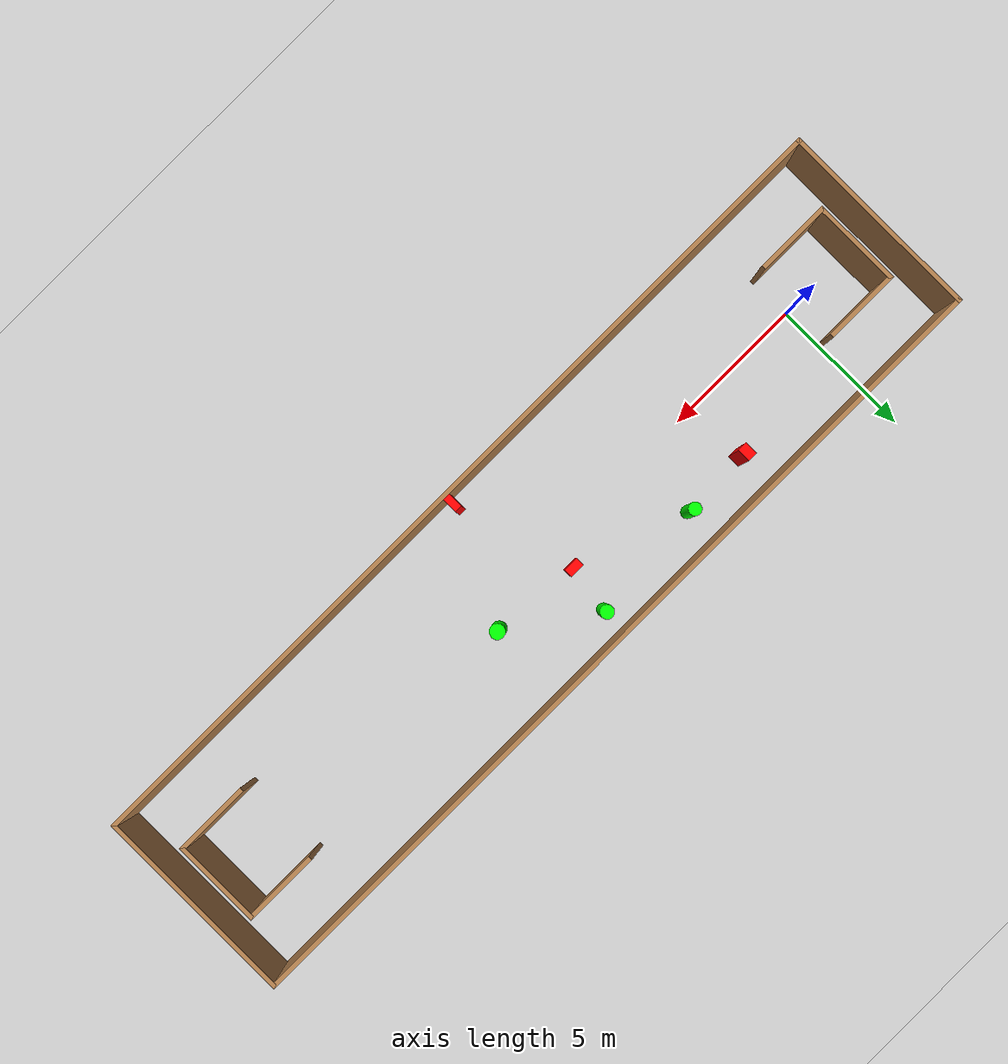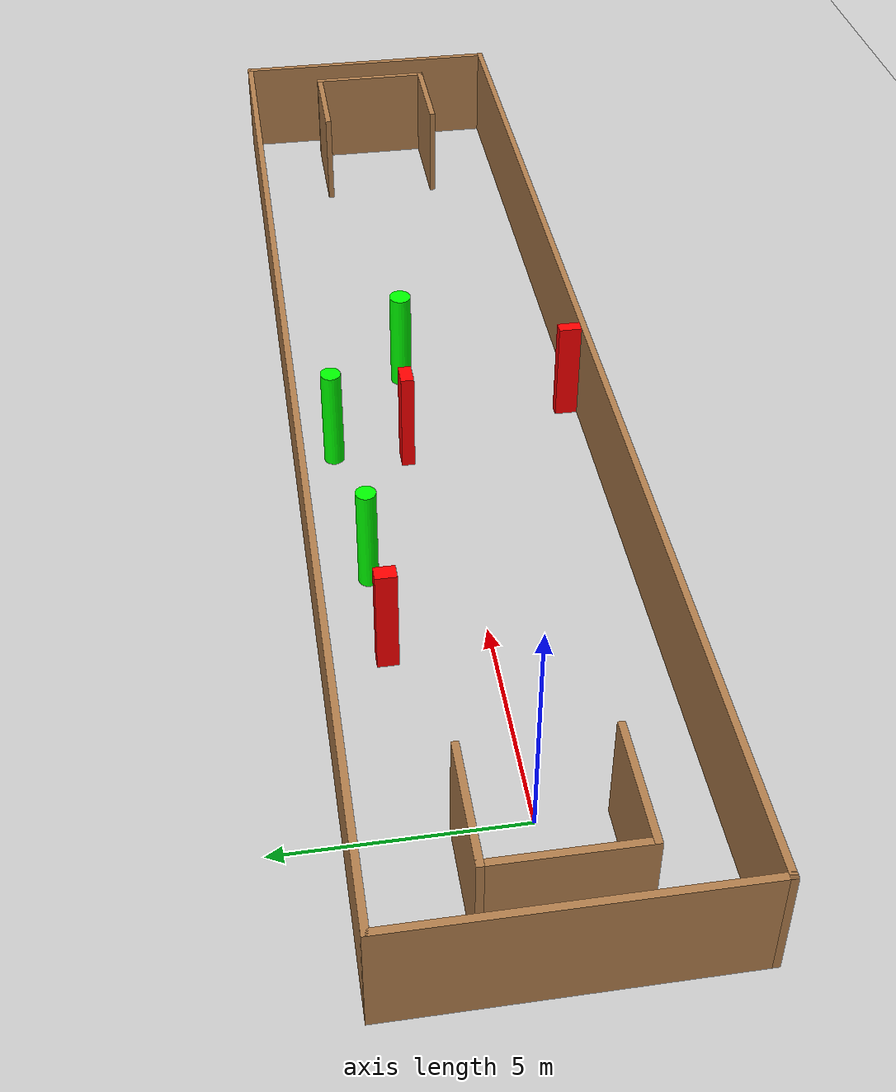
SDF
<sdf version="1.7">
 <world name="default">
  <light name="sun" type="directional">
   <pose>0 0 10 0 -0 0</pose>
   <diffuse>0.8 0.8 0.8 1</diffuse>
   <specular>0.2 0.2 0.2 1</specular>
   <attenuation>
    <range>1000</range>
    <constant>0.9</constant>
    <linear>0.01</linear>
    <quadratic>0.001</quadratic>
   </attenuation>
   <direction>-0.5 0.1 -0.9</direction>
   <spot><inner_angle>0</inner_angle><outer_angle>0</outer_angle><falloff>0</falloff></spot>
  </light>
  <model name="ground_plane">
   <static>1</static>
   <link name="link">
    <collision name="collision">
     <geometry><plane><normal>0 0 1</normal><size>100 100</size></plane></geometry>
     <surface>
      <contact><collide_bitmask>65535</collide_bitmask></contact>
      <friction><ode><mu>100</mu><mu2>50</mu2></ode></friction>
     </surface>
    </collision>
    <visual name="visual">
     <cast_shadows>0</cast_shadows>
     <geometry><plane><normal>0 0 1</normal><size>100 100</size></plane></geometry>
     <material>
      <script><uri>file://media/materials/scripts/gazebo.material</uri><name>Gazebo/Grey</name></script>
     </material>
    </visual>
   </link>
  </model>
  <gravity>0 0 -9.8</gravity>
  <magnetic_field>6e-06 2.3e-05 -4.2e-05</magnetic_field>
  <atmosphere type="adiabatic"/>
  <physics type="ode">
   <max_step_size>0.001</max_step_size>
   <real_time_factor>1</real_time_factor>
   <real_time_update_rate>1000</real_time_update_rate>
  </physics>
  <scene><ambient>0.4 0.4 0.4 1</ambient><background>0.7 0.7 0.7 1</background><shadows>1</shadows></scene>
  <spherical_coordinates>
   <surface_model>EARTH_WGS84</surface_model>
   <latitude_deg>0</latitude_deg>
   <longitude_deg>0</longitude_deg>
   <elevation>0</elevation>
   <heading_deg>0</heading_deg>
  </spherical_coordinates>
  <model name="my_base_walls">
   <link name="Wall_0">
    <collision name="Wall_0_Collision">
     <geometry><box><size>7.15 0.15 2.5</size></box></geometry>
     <pose>0 0 1.25 0 -0 0</pose>
    </collision>
    <visual name="Wall_0_Visual">
     <pose>0 0 1.25 0 -0 0</pose>
     <geometry><box><size>7.15 0.15 2.5</size></box></geometry>
     <material>
      <script><uri>file://media/materials/scripts/gazebo.material</uri><name>Gazebo/Wood</name></script>
      <ambient>1 1 1 1</ambient>
     </material>
     <meta><layer>0</layer></meta>
    </visual>
    <pose>-15 0 0 0 -0 1.5708</pose>
   </link>
   <link name="Wall_10">
    <collision name="Wall_10_Collision">
     <geometry><box><size>2.65 0.15 2.5</size></box></geometry>
     <pose>0 0 1.25 0 -0 0</pose>
    </collision>
    <visual name="Wall_10_Visual">
     <pose>0 0 1.25 0 -0 0</pose>
     <geometry><box><size>2.65 0.15 2.5</size></box></geometry>
     <material>
      <script><uri>file://media/materials/scripts/gazebo.material</uri><name>Gazebo/Wood</name></script>
      <ambient>1 1 1 1</ambient>
     </material>
     <meta><layer>0</layer></meta>
    </visual>
    <pose>-12.75 -1.5 0 0 -0 0</pose>
   </link>
   <link name="Wall_12">
    <collision name="Wall_12_Collision">
     <geometry><box><size>2.65 0.15 2.5</size></box></geometry>
     <pose>0 0 1.25 0 -0 0</pose>
    </collision>
    <visual name="Wall_12_Visual">
     <pose>0 0 1.25 0 -0 0</pose>
     <geometry><box><size>2.65 0.15 2.5</size></box></geometry>
     <material>
      <script><uri>file://media/materials/scripts/gazebo.material</uri><name>Gazebo/Wood</name></script>
      <ambient>1 1 1 1</ambient>
     </material>
     <meta><layer>0</layer></meta>
    </visual>
    <pose>-12.75 1.5 0 0 -0 0</pose>
   </link>
   <link name="Wall_14">
    <collision name="Wall_14_Collision">
     <geometry><box><size>3.15 0.15 2.5</size></box></geometry>
     <pose>0 0 1.25 0 -0 0</pose>
    </collision>
    <visual name="Wall_14_Visual">
     <pose>0 0 1.25 0 -0 0</pose>
     <geometry><box><size>3.15 0.15 2.5</size></box></geometry>
     <material>
      <script><uri>file://media/materials/scripts/gazebo.material</uri><name>Gazebo/Wood</name></script>
      <ambient>1 1 1 1</ambient>
     </material>
     <meta><layer>0</layer></meta>
    </visual>
    <pose>14 0 0 0 -0 -1.5708</pose>
   </link>
   <link name="Wall_15">
    <collision name="Wall_15_Collision">
     <geometry><box><size>2.65 0.15 2.5</size></box></geometry>
     <pose>0 0 1.25 0 -0 0</pose>
    </collision>
    <visual name="Wall_15_Visual">
     <pose>0 0 1.25 0 -0 0</pose>
     <geometry><box><size>2.65 0.15 2.5</size></box></geometry>
     <material>
      <script><uri>file://media/materials/scripts/gazebo.material</uri><name>Gazebo/Wood</name></script>
      <ambient>1 1 1 1</ambient>
     </material>
     <meta><layer>0</layer></meta>
    </visual>
    <pose>12.75 -1.5 0 0 -0 3.14159</pose>
   </link>
   <link name="Wall_17">
    <collision name="Wall_17_Collision">
     <geometry><box><size>2.65 0.15 2.5</size></box></geometry>
     <pose>0 0 1.25 0 -0 0</pose>
    </collision>
    <visual name="Wall_17_Visual">
     <pose>0 0 1.25 0 -0 0</pose>
     <geometry><box><size>2.65 0.15 2.5</size></box></geometry>
     <material>
      <script><uri>file://media/materials/scripts/gazebo.material</uri><name>Gazebo/Wood</name></script>
      <ambient>1 1 1 1</ambient>
     </material>
     <meta><layer>0</layer></meta>
    </visual>
    <pose>12.75 1.5 0 0 -0 3.14159</pose>
   </link>
   <link name="Wall_2">
    <collision name="Wall_2_Collision">
     <geometry><box><size>30.15 0.15 2.5</size></box></geometry>
     <pose>0 0 1.25 0 -0 0</pose>
    </collision>
    <visual name="Wall_2_Visual">
     <pose>0 0 1.25 0 -0 0</pose>
     <geometry><box><size>30.15 0.15 2.5</size></box></geometry>
     <material>
      <script><uri>file://media/materials/scripts/gazebo.material</uri><name>Gazebo/Wood</name></script>
      <ambient>1 1 1 1</ambient>
     </material>
     <meta><layer>0</layer></meta>
    </visual>
    <pose>-0 -3.5 0 0 -0 0</pose>
   </link>
   <link name="Wall_4">
    <collision name="Wall_4_Collision">
     <geometry><box><size>30.15 0.15 2.5</size></box></geometry>
     <pose>0 0 1.25 0 -0 0</pose>
    </collision>
    <visual name="Wall_4_Visual">
     <pose>0 0 1.25 0 -0 0</pose>
     <geometry><box><size>30.15 0.15 2.5</size></box></geometry>
     <material>
      <script><uri>file://media/materials/scripts/gazebo.material</uri><name>Gazebo/Wood</name></script>
      <ambient>1 1 1 1</ambient>
     </material>
     <meta><layer>0</layer></meta>
    </visual>
    <pose>-0 3.5 0 0 -0 0</pose>
   </link>
   <link name="Wall_6">
    <collision name="Wall_6_Collision">
     <geometry><box><size>7.15 0.15 2.5</size></box></geometry>
     <pose>0 0 1.25 0 -0 0</pose>
    </collision>
    <visual name="Wall_6_Visual">
     <pose>0 0 1.25 0 -0 0</pose>
     <geometry><box><size>7.15 0.15 2.5</size></box></geometry>
     <material>
      <script><uri>file://media/materials/scripts/gazebo.material</uri><name>Gazebo/Wood</name></script>
      <ambient>1 1 1 1</ambient>
     </material>
     <meta><layer>0</layer></meta>
    </visual>
    <pose>15 0 0 0 -0 -1.5708</pose>
   </link>
   <link name="Wall_9">
    <collision name="Wall_9_Collision">
     <geometry><box><size>3.15 0.15 2.5</size></box></geometry>
     <pose>0 0 1.25 0 -0 0</pose>
    </collision>
    <visual name="Wall_9_Visual">
     <pose>0 0 1.25 0 -0 0</pose>
     <geometry><box><size>3.15 0.15 2.5</size></box></geometry>
     <material>
      <script><uri>file://media/materials/scripts/gazebo.material</uri><name>Gazebo/Wood</name></script>
      <ambient>1 1 1 1</ambient>
     </material>
     <meta><layer>0</layer></meta>
    </visual>
    <pose>-14 0 0 0 -0 -1.5708</pose>
   </link>
   <static>1</static>
   <pose>11.5 0 0 0 -0 0</pose>
  </model>
  <model name="cylinder1">
   <static>1</static>
   <link name="link">
    <inertial>
     <mass>1</mass>
     <inertia><ixx>0.5</ixx><ixy>0</ixy><ixz>0</ixz><iyy>0.5</iyy><iyz>0</iyz><izz>1</izz></inertia>
    </inertial>
    <collision name="collision">
     <geometry><cylinder><radius>0.25847591540251863</radius><length>2.5</length></cylinder></geometry>
    </collision>
    <visual name="visual">
     <geometry><cylinder><radius>0.25847591540251863</radius><length>2.5</length></cylinder></geometry>
     <material>
      <ambient>0 1 0 1</ambient>
      <diffuse>0 1 0 1</diffuse>
      <specular>0.1 0.1 0.1 1</specular>
      <emissive>0 0 0 0</emissive>
     </material>
    </visual>
   </link>
   <pose>13.879215164386027 0.6388288727886211 1.25 0 0 0</pose>
  </model>
  <model name="cylinder2">
   <static>1</static>
   <link name="link">
    <inertial>
     <mass>1</mass>
     <inertia><ixx>0.5</ixx><ixy>0</ixy><ixz>0</ixz><iyy>0.5</iyy><iyz>0</iyz><izz>1</izz></inertia>
    </inertial>
    <collision name="collision">
     <geometry><cylinder><radius>0.23575211609181518</radius><length>2.5</length></cylinder></geometry>
    </collision>
    <visual name="visual">
     <geometry><cylinder><radius>0.23575211609181518</radius><length>2.5</length></cylinder></geometry>
     <material>
      <ambient>0 1 0 1</ambient>
      <diffuse>0 1 0 1</diffuse>
      <specular>0.1 0.1 0.1 1</specular>
      <emissive>0 0 0 0</emissive>
     </material>
    </visual>
   </link>
   <pose>11.047200230314974 2.6102993155307335 1.25 0 0 0</pose>
  </model>
  <model name="cylinder3">
   <static>1</static>
   <link name="link">
    <inertial>
     <mass>1</mass>
     <inertia><ixx>0.5</ixx><ixy>0</ixy><ixz>0</ixz><iyy>0.5</iyy><iyz>0</iyz><izz>1</izz></inertia>
    </inertial>
    <collision name="collision">
     <geometry><cylinder><radius>0.22169974620665972</radius><length>2.5</length></cylinder></geometry>
    </collision>
    <visual name="visual">
     <geometry><cylinder><radius>0.22169974620665972</radius><length>2.5</length></cylinder></geometry>
     <material>
      <ambient>0 1 0 1</ambient>
      <diffuse>0 1 0 1</diffuse>
      <specular>0.1 0.1 0.1 1</specular>
      <emissive>0 0 0 0</emissive>
     </material>
    </visual>
   </link>
   <pose>6.864534124315513 2.2873542735221672 1.25 0 0 0</pose>
  </model>
  <model name="box1">
   <static>1</static>
   <link name="link">
    <inertial>
     <mass>1</mass>
     <inertia><ixx>0.083</ixx><ixy>0</ixy><ixz>0</ixz><iyy>0.083</iyy><iyz>0</iyz><izz>0.083</izz></inertia>
    </inertial>
    <collision name="collision">
     <geometry><box><size>0.5255684873227251 0.3018949668724087 2.5</size></box></geometry>
    </collision>
    <visual name="visual">
     <geometry><box><size>0.5255684873227251 0.3018949668724087 2.5</size></box></geometry>
     <material>
      <ambient>1 0 0 1</ambient>
      <diffuse>1 0 0 1</diffuse>
      <specular>0.1 0.1 0.1 1</specular>
      <emissive>0 0 0 0</emissive>
     </material>
    </visual>
    <sensor name="my_contact" type="contact">
     <contact><collision>box_collision</collision><topic>__default_topic__</topic></contact>
    </sensor>
   </link>
   <pose>10.791614547458773 0.912609491962038 1.25 0 0 0</pose>
  </model>
  <model name="box2">
   <static>1</static>
   <link name="link">
    <inertial>
     <mass>1</mass>
     <inertia><ixx>0.083</ixx><ixy>0</ixy><ixz>0</ixz><iyy>0.083</iyy><iyz>0</iyz><izz>0.083</izz></inertia>
    </inertial>
    <collision name="collision">
     <geometry><box><size>0.2707036478421863 0.5608445667036006 2.5</size></box></geometry>
    </collision>
    <visual name="visual">
     <geometry><box><size>0.2707036478421863 0.5608445667036006 2.5</size></box></geometry>
     <material>
      <ambient>1 0 0 1</ambient>
      <diffuse>1 0 0 1</diffuse>
      <specular>0.1 0.1 0.1 1</specular>
      <emissive>0 0 0 0</emissive>
     </material>
    </visual>
    <sensor name="my_contact" type="contact">
     <contact><collision>box_collision</collision><topic>__default_topic__</topic></contact>
    </sensor>
   </link>
   <pose>12.040259051081403 -3.174291928192549 1.25 0 0 0</pose>
  </model>
  <model name="box3">
   <static>1</static>
   <link name="link">
    <inertial>
     <mass>1</mass>
     <inertia><ixx>0.083</ixx><ixy>0</ixy><ixz>0</ixz><iyy>0.083</iyy><iyz>0</iyz><izz>0.083</izz></inertia>
    </inertial>
    <collision name="collision">
     <geometry><box><size>0.3353128505709137 0.4604187982812795 2.5</size></box></geometry>
    </collision>
    <visual name="visual">
     <geometry><box><size>0.3353128505709137 0.4604187982812795 2.5</size></box></geometry>
     <material>
      <ambient>1 0 0 1</ambient>
      <diffuse>1 0 0 1</diffuse>
      <specular>0.1 0.1 0.1 1</specular>
      <emissive>0 0 0 0</emissive>
     </material>
    </visual>
    <sensor name="my_contact" type="contact">
     <contact><collision>box_collision</collision><topic>__default_topic__</topic></contact>
    </sensor>
   </link>
   <pose>4.462192600245542 2.18485633954639 1.25 0 0 0</pose>
  </model>
 </world>
</sdf>
